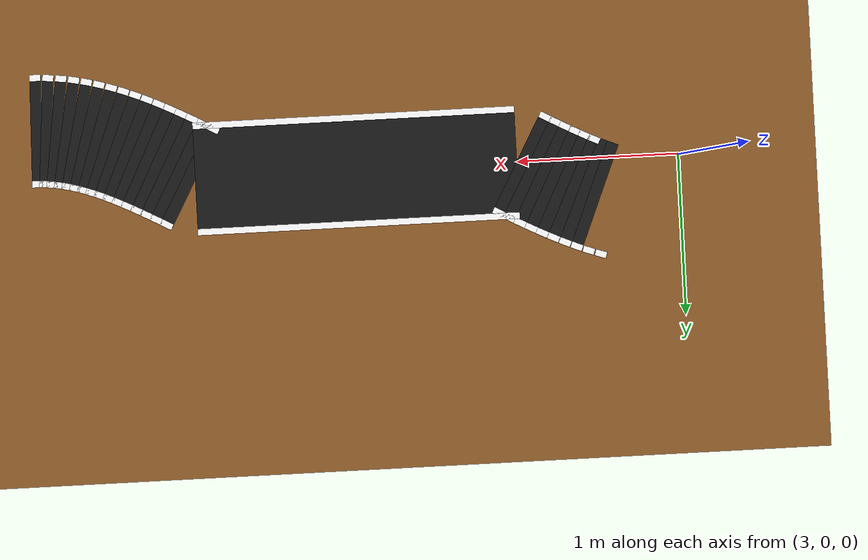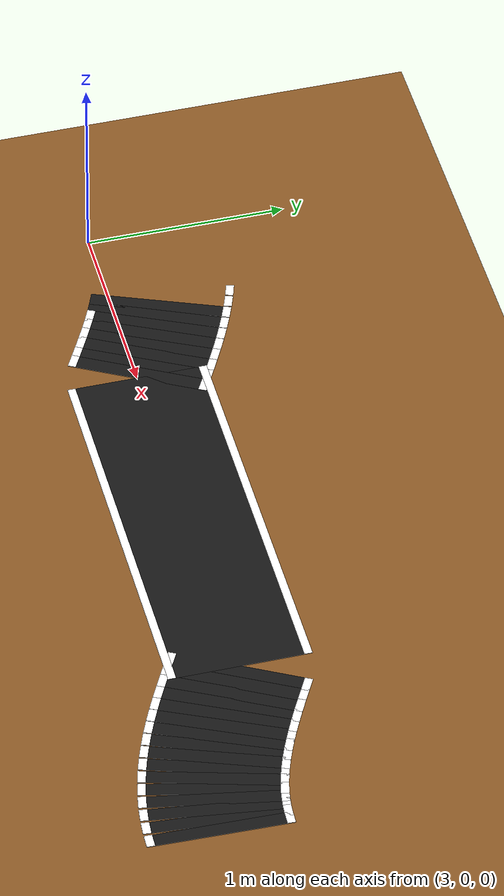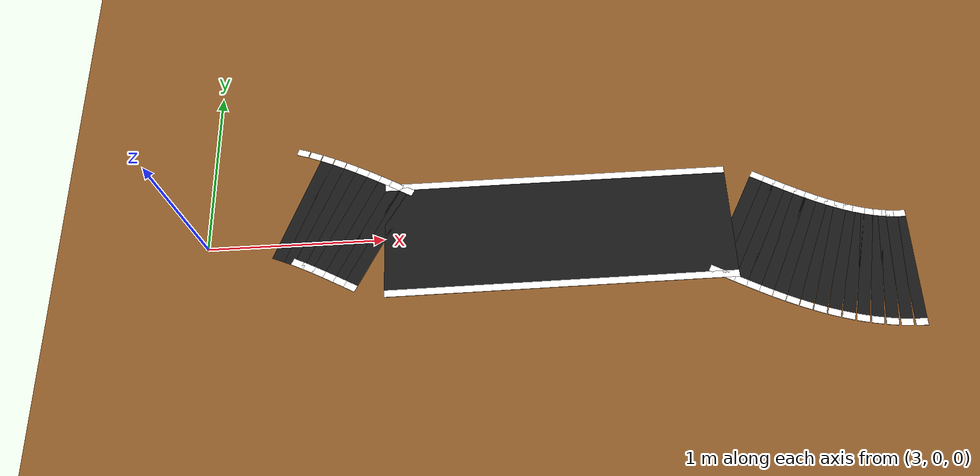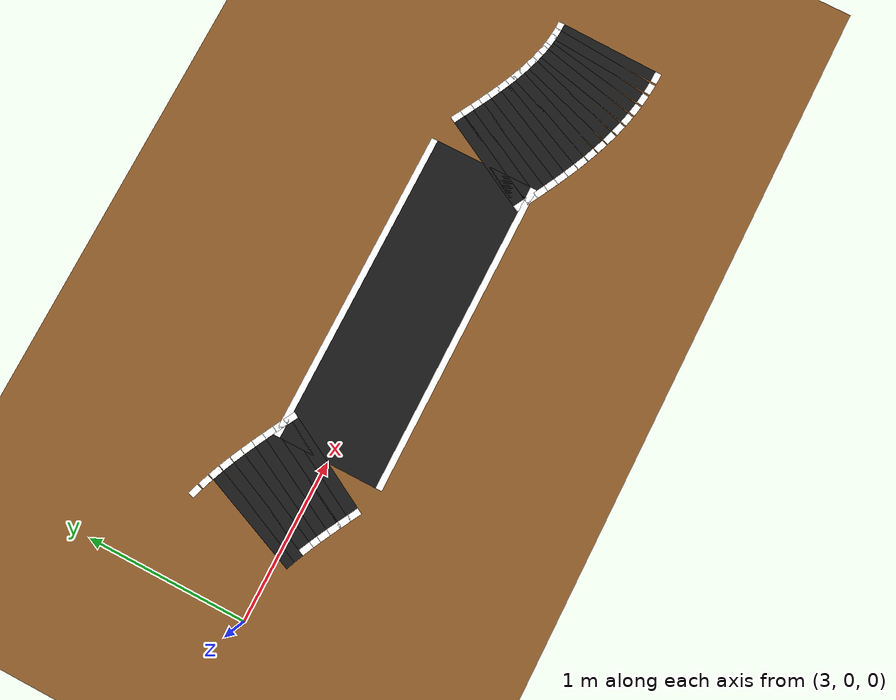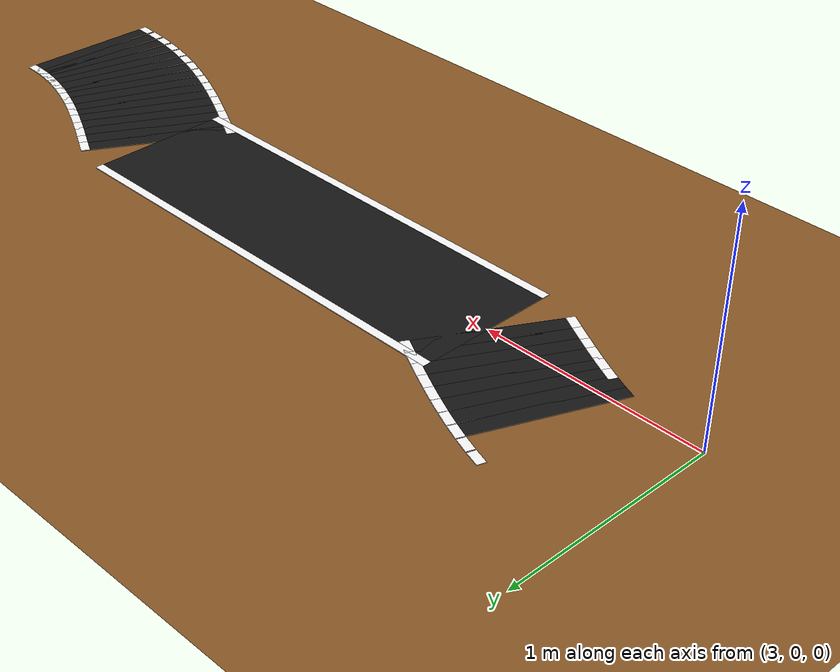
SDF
<sdf version="1.9">
 <world name="lka_world">
  <model name="ground_plane">
   <static>true</static>
   <link name="link">
    <collision name="col">
     <geometry><plane><normal>0 0 1</normal><size>100 100</size></plane></geometry>
     <surface><friction><ode><mu>0.8</mu><mu2>0.8</mu2></ode></friction></surface>
    </collision>
    <visual name="vis">
     <geometry><plane><normal>0 0 1</normal><size>100 100</size></plane></geometry>
     <material><ambient>0.45 0.28 0.10 1</ambient><diffuse>0.55 0.35 0.15 1</diffuse></material>
    </visual>
   </link>
  </model>
  <model name="c1_left_22">
   <static>true</static>
   <pose>3.508957 0.594733 0.002000 0.000000 0.000000 -0.316489</pose>
   <link name="link">
    <collision name="col">
     <geometry><box><size>0.071764 0.040000 0.003000</size></box></geometry>
     <surface><friction><ode><mu>1.0</mu><mu2>1.0</mu2></ode></friction></surface>
    </collision>
    <visual name="vis">
     <geometry><box><size>0.071764 0.040000 0.003000</size></box></geometry>
     <material><ambient>1.0 1.0 1.0 1</ambient><diffuse>1.0 1.0 1.0 1</diffuse></material>
    </visual>
   </link>
  </model>
  <model name="c1_left_23">
   <static>true</static>
   <pose>3.583046 0.568908 0.002000 0.000000 0.000000 -0.353679</pose>
   <link name="link">
    <collision name="col">
     <geometry><box><size>0.072621 0.040000 0.003000</size></box></geometry>
     <surface><friction><ode><mu>1.0</mu><mu2>1.0</mu2></ode></friction></surface>
    </collision>
    <visual name="vis">
     <geometry><box><size>0.072621 0.040000 0.003000</size></box></geometry>
     <material><ambient>1.0 1.0 1.0 1</ambient><diffuse>1.0 1.0 1.0 1</diffuse></material>
    </visual>
   </link>
  </model>
  <model name="c1_road_24">
   <static>true</static>
   <pose>3.531250 0.235046 0.001000 0.000000 0.000000 -0.386829</pose>
   <link name="link">
    <collision name="col">
     <geometry><box><size>0.073483 0.700000 0.002000</size></box></geometry>
     <surface><friction><ode><mu>1.0</mu><mu2>1.0</mu2></ode></friction></surface>
    </collision>
    <visual name="vis">
     <geometry><box><size>0.073483 0.700000 0.002000</size></box></geometry>
     <material><ambient>0.06 0.06 0.06 1</ambient><diffuse>0.09 0.09 0.09 1</diffuse></material>
    </visual>
   </link>
  </model>
  <model name="c1_left_24">
   <static>true</static>
   <pose>3.655744 0.540662 0.002000 0.000000 0.000000 -0.386829</pose>
   <link name="link">
    <collision name="col">
     <geometry><box><size>0.073483 0.040000 0.003000</size></box></geometry>
     <surface><friction><ode><mu>1.0</mu><mu2>1.0</mu2></ode></friction></surface>
    </collision>
    <visual name="vis">
     <geometry><box><size>0.073483 0.040000 0.003000</size></box></geometry>
     <material><ambient>1.0 1.0 1.0 1</ambient><diffuse>1.0 1.0 1.0 1</diffuse></material>
    </visual>
   </link>
  </model>
  <model name="c1_road_25">
   <static>true</static>
   <pose>3.593750 0.208495 0.001000 0.000000 0.000000 -0.415829</pose>
   <link name="link">
    <collision name="col">
     <geometry><box><size>0.074318 0.700000 0.002000</size></box></geometry>
     <surface><friction><ode><mu>1.0</mu><mu2>1.0</mu2></ode></friction></surface>
    </collision>
    <visual name="vis">
     <geometry><box><size>0.074318 0.700000 0.002000</size></box></geometry>
     <material><ambient>0.06 0.06 0.06 1</ambient><diffuse>0.09 0.09 0.09 1</diffuse></material>
    </visual>
   </link>
  </model>
  <model name="c1_left_25">
   <static>true</static>
   <pose>3.727053 0.510373 0.002000 0.000000 0.000000 -0.415829</pose>
   <link name="link">
    <collision name="col">
     <geometry><box><size>0.074318 0.040000 0.003000</size></box></geometry>
     <surface><friction><ode><mu>1.0</mu><mu2>1.0</mu2></ode></friction></surface>
    </collision>
    <visual name="vis">
     <geometry><box><size>0.074318 0.040000 0.003000</size></box></geometry>
     <material><ambient>1.0 1.0 1.0 1</ambient><diffuse>1.0 1.0 1.0 1</diffuse></material>
    </visual>
   </link>
  </model>
  <model name="c1_road_26">
   <static>true</static>
   <pose>3.656250 0.179936 0.001000 0.000000 0.000000 -0.440632</pose>
   <link name="link">
    <collision name="col">
     <geometry><box><size>0.075095 0.700000 0.002000</size></box></geometry>
     <surface><friction><ode><mu>1.0</mu><mu2>1.0</mu2></ode></friction></surface>
    </collision>
    <visual name="vis">
     <geometry><box><size>0.075095 0.700000 0.002000</size></box></geometry>
     <material><ambient>0.06 0.06 0.06 1</ambient><diffuse>0.09 0.09 0.09 1</diffuse></material>
    </visual>
   </link>
  </model>
  <model name="c1_left_26">
   <static>true</static>
   <pose>3.796999 0.478415 0.002000 0.000000 0.000000 -0.440632</pose>
   <link name="link">
    <collision name="col">
     <geometry><box><size>0.075095 0.040000 0.003000</size></box></geometry>
     <surface><friction><ode><mu>1.0</mu><mu2>1.0</mu2></ode></friction></surface>
    </collision>
    <visual name="vis">
     <geometry><box><size>0.075095 0.040000 0.003000</size></box></geometry>
     <material><ambient>1.0 1.0 1.0 1</ambient><diffuse>1.0 1.0 1.0 1</diffuse></material>
    </visual>
   </link>
  </model>
  <model name="c1_right_26">
   <static>true</static>
   <pose>3.515501 -0.118543 0.002000 0.000000 0.000000 -0.440632</pose>
   <link name="link">
    <collision name="col">
     <geometry><box><size>0.075095 0.040000 0.003000</size></box></geometry>
     <surface><friction><ode><mu>1.0</mu><mu2>1.0</mu2></ode></friction></surface>
    </collision>
    <visual name="vis">
     <geometry><box><size>0.075095 0.040000 0.003000</size></box></geometry>
     <material><ambient>1.0 1.0 1.0 1</ambient><diffuse>1.0 1.0 1.0 1</diffuse></material>
    </visual>
   </link>
  </model>
  <model name="c1_road_27">
   <static>true</static>
   <pose>3.718750 0.149644 0.001000 0.000000 0.000000 -0.461234</pose>
   <link name="link">
    <collision name="col">
     <geometry><box><size>0.075788 0.700000 0.002000</size></box></geometry>
     <surface><friction><ode><mu>1.0</mu><mu2>1.0</mu2></ode></friction></surface>
    </collision>
    <visual name="vis">
     <geometry><box><size>0.075788 0.700000 0.002000</size></box></geometry>
     <material><ambient>0.06 0.06 0.06 1</ambient><diffuse>0.09 0.09 0.09 1</diffuse></material>
    </visual>
   </link>
  </model>
  <model name="c1_left_27">
   <static>true</static>
   <pose>3.865618 0.445161 0.002000 0.000000 0.000000 -0.461234</pose>
   <link name="link">
    <collision name="col">
     <geometry><box><size>0.075788 0.040000 0.003000</size></box></geometry>
     <surface><friction><ode><mu>1.0</mu><mu2>1.0</mu2></ode></friction></surface>
    </collision>
    <visual name="vis">
     <geometry><box><size>0.075788 0.040000 0.003000</size></box></geometry>
     <material><ambient>1.0 1.0 1.0 1</ambient><diffuse>1.0 1.0 1.0 1</diffuse></material>
    </visual>
   </link>
  </model>
  <model name="c1_right_27">
   <static>true</static>
   <pose>3.571882 -0.145872 0.002000 0.000000 0.000000 -0.461234</pose>
   <link name="link">
    <collision name="col">
     <geometry><box><size>0.075788 0.040000 0.003000</size></box></geometry>
     <surface><friction><ode><mu>1.0</mu><mu2>1.0</mu2></ode></friction></surface>
    </collision>
    <visual name="vis">
     <geometry><box><size>0.075788 0.040000 0.003000</size></box></geometry>
     <material><ambient>1.0 1.0 1.0 1</ambient><diffuse>1.0 1.0 1.0 1</diffuse></material>
    </visual>
   </link>
  </model>
  <model name="c1_road_28">
   <static>true</static>
   <pose>3.781250 0.117911 0.001000 0.000000 0.000000 -0.477654</pose>
   <link name="link">
    <collision name="col">
     <geometry><box><size>0.076371 0.700000 0.002000</size></box></geometry>
     <surface><friction><ode><mu>1.0</mu><mu2>1.0</mu2></ode></friction></surface>
    </collision>
    <visual name="vis">
     <geometry><box><size>0.076371 0.700000 0.002000</size></box></geometry>
     <material><ambient>0.06 0.06 0.06 1</ambient><diffuse>0.09 0.09 0.09 1</diffuse></material>
    </visual>
   </link>
  </model>
  <model name="c1_left_28">
   <static>true</static>
   <pose>3.932950 0.410976 0.002000 0.000000 0.000000 -0.477654</pose>
   <link name="link">
    <collision name="col">
     <geometry><box><size>0.076371 0.040000 0.003000</size></box></geometry>
     <surface><friction><ode><mu>1.0</mu><mu2>1.0</mu2></ode></friction></surface>
    </collision>
    <visual name="vis">
     <geometry><box><size>0.076371 0.040000 0.003000</size></box></geometry>
     <material><ambient>1.0 1.0 1.0 1</ambient><diffuse>1.0 1.0 1.0 1</diffuse></material>
    </visual>
   </link>
  </model>
  <model name="c1_right_28">
   <static>true</static>
   <pose>3.629550 -0.175154 0.002000 0.000000 0.000000 -0.477654</pose>
   <link name="link">
    <collision name="col">
     <geometry><box><size>0.076371 0.040000 0.003000</size></box></geometry>
     <surface><friction><ode><mu>1.0</mu><mu2>1.0</mu2></ode></friction></surface>
    </collision>
    <visual name="vis">
     <geometry><box><size>0.076371 0.040000 0.003000</size></box></geometry>
     <material><ambient>1.0 1.0 1.0 1</ambient><diffuse>1.0 1.0 1.0 1</diffuse></material>
    </visual>
   </link>
  </model>
  <model name="c1_road_29">
   <static>true</static>
   <pose>3.843750 0.085043 0.001000 0.000000 0.000000 -0.489927</pose>
   <link name="link">
    <collision name="col">
     <geometry><box><size>0.076826 0.700000 0.002000</size></box></geometry>
     <surface><friction><ode><mu>1.0</mu><mu2>1.0</mu2></ode></friction></surface>
    </collision>
    <visual name="vis">
     <geometry><box><size>0.076826 0.700000 0.002000</size></box></geometry>
     <material><ambient>0.06 0.06 0.06 1</ambient><diffuse>0.09 0.09 0.09 1</diffuse></material>
    </visual>
   </link>
  </model>
  <model name="c1_left_29">
   <static>true</static>
   <pose>3.999035 0.376224 0.002000 0.000000 0.000000 -0.489927</pose>
   <link name="link">
    <collision name="col">
     <geometry><box><size>0.076826 0.040000 0.003000</size></box></geometry>
     <surface><friction><ode><mu>1.0</mu><mu2>1.0</mu2></ode></friction></surface>
    </collision>
    <visual name="vis">
     <geometry><box><size>0.076826 0.040000 0.003000</size></box></geometry>
     <material><ambient>1.0 1.0 1.0 1</ambient><diffuse>1.0 1.0 1.0 1</diffuse></material>
    </visual>
   </link>
  </model>
  <model name="c1_right_29">
   <static>true</static>
   <pose>3.688465 -0.206138 0.002000 0.000000 0.000000 -0.489927</pose>
   <link name="link">
    <collision name="col">
     <geometry><box><size>0.076826 0.040000 0.003000</size></box></geometry>
     <surface><friction><ode><mu>1.0</mu><mu2>1.0</mu2></ode></friction></surface>
    </collision>
    <visual name="vis">
     <geometry><box><size>0.076826 0.040000 0.003000</size></box></geometry>
     <material><ambient>1.0 1.0 1.0 1</ambient><diffuse>1.0 1.0 1.0 1</diffuse></material>
    </visual>
   </link>
  </model>
  <model name="c1_road_30">
   <static>true</static>
   <pose>3.906250 0.051356 0.001000 0.000000 0.000000 -0.498086</pose>
   <link name="link">
    <collision name="col">
     <geometry><box><size>0.077138 0.700000 0.002000</size></box></geometry>
     <surface><friction><ode><mu>1.0</mu><mu2>1.0</mu2></ode></friction></surface>
    </collision>
    <visual name="vis">
     <geometry><box><size>0.077138 0.700000 0.002000</size></box></geometry>
     <material><ambient>0.06 0.06 0.06 1</ambient><diffuse>0.09 0.09 0.09 1</diffuse></material>
    </visual>
   </link>
  </model>
  <model name="c1_left_30">
   <static>true</static>
   <pose>4.063906 0.341260 0.002000 0.000000 0.000000 -0.498086</pose>
   <link name="link">
    <collision name="col">
     <geometry><box><size>0.077138 0.040000 0.003000</size></box></geometry>
     <surface><friction><ode><mu>1.0</mu><mu2>1.0</mu2></ode></friction></surface>
    </collision>
    <visual name="vis">
     <geometry><box><size>0.077138 0.040000 0.003000</size></box></geometry>
     <material><ambient>1.0 1.0 1.0 1</ambient><diffuse>1.0 1.0 1.0 1</diffuse></material>
    </visual>
   </link>
  </model>
  <model name="c1_right_30">
   <static>true</static>
   <pose>3.748594 -0.238549 0.002000 0.000000 0.000000 -0.498086</pose>
   <link name="link">
    <collision name="col">
     <geometry><box><size>0.077138 0.040000 0.003000</size></box></geometry>
     <surface><friction><ode><mu>1.0</mu><mu2>1.0</mu2></ode></friction></surface>
    </collision>
    <visual name="vis">
     <geometry><box><size>0.077138 0.040000 0.003000</size></box></geometry>
     <material><ambient>1.0 1.0 1.0 1</ambient><diffuse>1.0 1.0 1.0 1</diffuse></material>
    </visual>
   </link>
  </model>
  <model name="c1_road_31">
   <static>true</static>
   <pose>3.968750 0.017174 0.001000 0.000000 0.000000 -0.502158</pose>
   <link name="link">
    <collision name="col">
     <geometry><box><size>0.077296 0.700000 0.002000</size></box></geometry>
     <surface><friction><ode><mu>1.0</mu><mu2>1.0</mu2></ode></friction></surface>
    </collision>
    <visual name="vis">
     <geometry><box><size>0.077296 0.700000 0.002000</size></box></geometry>
     <material><ambient>0.06 0.06 0.06 1</ambient><diffuse>0.09 0.09 0.09 1</diffuse></material>
    </visual>
   </link>
  </model>
  <model name="c1_left_31">
   <static>true</static>
   <pose>4.127585 0.306434 0.002000 0.000000 0.000000 -0.502158</pose>
   <link name="link">
    <collision name="col">
     <geometry><box><size>0.077296 0.040000 0.003000</size></box></geometry>
     <surface><friction><ode><mu>1.0</mu><mu2>1.0</mu2></ode></friction></surface>
    </collision>
    <visual name="vis">
     <geometry><box><size>0.077296 0.040000 0.003000</size></box></geometry>
     <material><ambient>1.0 1.0 1.0 1</ambient><diffuse>1.0 1.0 1.0 1</diffuse></material>
    </visual>
   </link>
  </model>
  <model name="c1_right_31">
   <static>true</static>
   <pose>3.809915 -0.272086 0.002000 0.000000 0.000000 -0.502158</pose>
   <link name="link">
    <collision name="col">
     <geometry><box><size>0.077296 0.040000 0.003000</size></box></geometry>
     <surface><friction><ode><mu>1.0</mu><mu2>1.0</mu2></ode></friction></surface>
    </collision>
    <visual name="vis">
     <geometry><box><size>0.077296 0.040000 0.003000</size></box></geometry>
     <material><ambient>1.0 1.0 1.0 1</ambient><diffuse>1.0 1.0 1.0 1</diffuse></material>
    </visual>
   </link>
  </model>
  <model name="s2_road">
   <static>true</static>
   <pose>5.000000 0.000000 0.001000 0.000000 0.000000 0.000000</pose>
   <link name="link">
    <collision name="col">
     <geometry><box><size>2.000000 0.700000 0.002000</size></box></geometry>
     <surface><friction><ode><mu>1.0</mu><mu2>1.0</mu2></ode></friction></surface>
    </collision>
    <visual name="vis">
     <geometry><box><size>2.000000 0.700000 0.002000</size></box></geometry>
     <material><ambient>0.06 0.06 0.06 1</ambient><diffuse>0.09 0.09 0.09 1</diffuse></material>
    </visual>
   </link>
  </model>
  <model name="s2_left">
   <static>true</static>
   <pose>5.000000 0.330000 0.002000 0.000000 0.000000 0.000000</pose>
   <link name="link">
    <collision name="col">
     <geometry><box><size>2.000000 0.040000 0.003000</size></box></geometry>
     <surface><friction><ode><mu>1.0</mu><mu2>1.0</mu2></ode></friction></surface>
    </collision>
    <visual name="vis">
     <geometry><box><size>2.000000 0.040000 0.003000</size></box></geometry>
     <material><ambient>1.0 1.0 1.0 1</ambient><diffuse>1.0 1.0 1.0 1</diffuse></material>
    </visual>
   </link>
  </model>
  <model name="s2_right">
   <static>true</static>
   <pose>5.000000 -0.330000 0.002000 0.000000 0.000000 0.000000</pose>
   <link name="link">
    <collision name="col">
     <geometry><box><size>2.000000 0.040000 0.003000</size></box></geometry>
     <surface><friction><ode><mu>1.0</mu><mu2>1.0</mu2></ode></friction></surface>
    </collision>
    <visual name="vis">
     <geometry><box><size>2.000000 0.040000 0.003000</size></box></geometry>
     <material><ambient>1.0 1.0 1.0 1</ambient><diffuse>1.0 1.0 1.0 1</diffuse></material>
    </visual>
   </link>
  </model>
  <model name="c2_road_0">
   <static>true</static>
   <pose>6.031250 -0.017174 0.001000 0.000000 0.000000 -0.502158</pose>
   <link name="link">
    <collision name="col">
     <geometry><box><size>0.077296 0.700000 0.002000</size></box></geometry>
     <surface><friction><ode><mu>1.0</mu><mu2>1.0</mu2></ode></friction></surface>
    </collision>
    <visual name="vis">
     <geometry><box><size>0.077296 0.700000 0.002000</size></box></geometry>
     <material><ambient>0.06 0.06 0.06 1</ambient><diffuse>0.09 0.09 0.09 1</diffuse></material>
    </visual>
   </link>
  </model>
  <model name="c2_left_0">
   <static>true</static>
   <pose>6.190085 0.272086 0.002000 0.000000 0.000000 -0.502158</pose>
   <link name="link">
    <collision name="col">
     <geometry><box><size>0.077296 0.040000 0.003000</size></box></geometry>
     <surface><friction><ode><mu>1.0</mu><mu2>1.0</mu2></ode></friction></surface>
    </collision>
    <visual name="vis">
     <geometry><box><size>0.077296 0.040000 0.003000</size></box></geometry>
     <material><ambient>1.0 1.0 1.0 1</ambient><diffuse>1.0 1.0 1.0 1</diffuse></material>
    </visual>
   </link>
  </model>
  <model name="c2_right_0">
   <static>true</static>
   <pose>5.872415 -0.306434 0.002000 0.000000 0.000000 -0.502158</pose>
   <link name="link">
    <collision name="col">
     <geometry><box><size>0.077296 0.040000 0.003000</size></box></geometry>
     <surface><friction><ode><mu>1.0</mu><mu2>1.0</mu2></ode></friction></surface>
    </collision>
    <visual name="vis">
     <geometry><box><size>0.077296 0.040000 0.003000</size></box></geometry>
     <material><ambient>1.0 1.0 1.0 1</ambient><diffuse>1.0 1.0 1.0 1</diffuse></material>
    </visual>
   </link>
  </model>
  <model name="c2_road_1">
   <static>true</static>
   <pose>6.093750 -0.051356 0.001000 0.000000 0.000000 -0.498086</pose>
   <link name="link">
    <collision name="col">
     <geometry><box><size>0.077138 0.700000 0.002000</size></box></geometry>
     <surface><friction><ode><mu>1.0</mu><mu2>1.0</mu2></ode></friction></surface>
    </collision>
    <visual name="vis">
     <geometry><box><size>0.077138 0.700000 0.002000</size></box></geometry>
     <material><ambient>0.06 0.06 0.06 1</ambient><diffuse>0.09 0.09 0.09 1</diffuse></material>
    </visual>
   </link>
  </model>
  <model name="c2_left_1">
   <static>true</static>
   <pose>6.251406 0.238549 0.002000 0.000000 0.000000 -0.498086</pose>
   <link name="link">
    <collision name="col">
     <geometry><box><size>0.077138 0.040000 0.003000</size></box></geometry>
     <surface><friction><ode><mu>1.0</mu><mu2>1.0</mu2></ode></friction></surface>
    </collision>
    <visual name="vis">
     <geometry><box><size>0.077138 0.040000 0.003000</size></box></geometry>
     <material><ambient>1.0 1.0 1.0 1</ambient><diffuse>1.0 1.0 1.0 1</diffuse></material>
    </visual>
   </link>
  </model>
  <model name="c2_right_1">
   <static>true</static>
   <pose>5.936094 -0.341260 0.002000 0.000000 0.000000 -0.498086</pose>
   <link name="link">
    <collision name="col">
     <geometry><box><size>0.077138 0.040000 0.003000</size></box></geometry>
     <surface><friction><ode><mu>1.0</mu><mu2>1.0</mu2></ode></friction></surface>
    </collision>
    <visual name="vis">
     <geometry><box><size>0.077138 0.040000 0.003000</size></box></geometry>
     <material><ambient>1.0 1.0 1.0 1</ambient><diffuse>1.0 1.0 1.0 1</diffuse></material>
    </visual>
   </link>
  </model>
  <model name="c2_road_2">
   <static>true</static>
   <pose>6.156250 -0.085043 0.001000 0.000000 0.000000 -0.489927</pose>
   <link name="link">
    <collision name="col">
     <geometry><box><size>0.076826 0.700000 0.002000</size></box></geometry>
     <surface><friction><ode><mu>1.0</mu><mu2>1.0</mu2></ode></friction></surface>
    </collision>
    <visual name="vis">
     <geometry><box><size>0.076826 0.700000 0.002000</size></box></geometry>
     <material><ambient>0.06 0.06 0.06 1</ambient><diffuse>0.09 0.09 0.09 1</diffuse></material>
    </visual>
   </link>
  </model>
  <model name="c2_left_2">
   <static>true</static>
   <pose>6.311535 0.206138 0.002000 0.000000 0.000000 -0.489927</pose>
   <link name="link">
    <collision name="col">
     <geometry><box><size>0.076826 0.040000 0.003000</size></box></geometry>
     <surface><friction><ode><mu>1.0</mu><mu2>1.0</mu2></ode></friction></surface>
    </collision>
    <visual name="vis">
     <geometry><box><size>0.076826 0.040000 0.003000</size></box></geometry>
     <material><ambient>1.0 1.0 1.0 1</ambient><diffuse>1.0 1.0 1.0 1</diffuse></material>
    </visual>
   </link>
  </model>
  <model name="c2_right_2">
   <static>true</static>
   <pose>6.000965 -0.376224 0.002000 0.000000 0.000000 -0.489927</pose>
   <link name="link">
    <collision name="col">
     <geometry><box><size>0.076826 0.040000 0.003000</size></box></geometry>
     <surface><friction><ode><mu>1.0</mu><mu2>1.0</mu2></ode></friction></surface>
    </collision>
    <visual name="vis">
     <geometry><box><size>0.076826 0.040000 0.003000</size></box></geometry>
     <material><ambient>1.0 1.0 1.0 1</ambient><diffuse>1.0 1.0 1.0 1</diffuse></material>
    </visual>
   </link>
  </model>
  <model name="c2_road_3">
   <static>true</static>
   <pose>6.218750 -0.117911 0.001000 0.000000 0.000000 -0.477654</pose>
   <link name="link">
    <collision name="col">
     <geometry><box><size>0.076371 0.700000 0.002000</size></box></geometry>
     <surface><friction><ode><mu>1.0</mu><mu2>1.0</mu2></ode></friction></surface>
    </collision>
    <visual name="vis">
     <geometry><box><size>0.076371 0.700000 0.002000</size></box></geometry>
     <material><ambient>0.06 0.06 0.06 1</ambient><diffuse>0.09 0.09 0.09 1</diffuse></material>
    </visual>
   </link>
  </model>
  <model name="c2_left_3">
   <static>true</static>
   <pose>6.370450 0.175154 0.002000 0.000000 0.000000 -0.477654</pose>
   <link name="link">
    <collision name="col">
     <geometry><box><size>0.076371 0.040000 0.003000</size></box></geometry>
     <surface><friction><ode><mu>1.0</mu><mu2>1.0</mu2></ode></friction></surface>
    </collision>
    <visual name="vis">
     <geometry><box><size>0.076371 0.040000 0.003000</size></box></geometry>
     <material><ambient>1.0 1.0 1.0 1</ambient><diffuse>1.0 1.0 1.0 1</diffuse></material>
    </visual>
   </link>
  </model>
  <model name="c2_right_3">
   <static>true</static>
   <pose>6.067050 -0.410976 0.002000 0.000000 0.000000 -0.477654</pose>
   <link name="link">
    <collision name="col">
     <geometry><box><size>0.076371 0.040000 0.003000</size></box></geometry>
     <surface><friction><ode><mu>1.0</mu><mu2>1.0</mu2></ode></friction></surface>
    </collision>
    <visual name="vis">
     <geometry><box><size>0.076371 0.040000 0.003000</size></box></geometry>
     <material><ambient>1.0 1.0 1.0 1</ambient><diffuse>1.0 1.0 1.0 1</diffuse></material>
    </visual>
   </link>
  </model>
  <model name="c2_road_4">
   <static>true</static>
   <pose>6.281250 -0.149644 0.001000 0.000000 0.000000 -0.461234</pose>
   <link name="link">
    <collision name="col">
     <geometry><box><size>0.075788 0.700000 0.002000</size></box></geometry>
     <surface><friction><ode><mu>1.0</mu><mu2>1.0</mu2></ode></friction></surface>
    </collision>
    <visual name="vis">
     <geometry><box><size>0.075788 0.700000 0.002000</size></box></geometry>
     <material><ambient>0.06 0.06 0.06 1</ambient><diffuse>0.09 0.09 0.09 1</diffuse></material>
    </visual>
   </link>
  </model>
  <model name="c2_left_4">
   <static>true</static>
   <pose>6.428118 0.145872 0.002000 0.000000 0.000000 -0.461234</pose>
   <link name="link">
    <collision name="col">
     <geometry><box><size>0.075788 0.040000 0.003000</size></box></geometry>
     <surface><friction><ode><mu>1.0</mu><mu2>1.0</mu2></ode></friction></surface>
    </collision>
    <visual name="vis">
     <geometry><box><size>0.075788 0.040000 0.003000</size></box></geometry>
     <material><ambient>1.0 1.0 1.0 1</ambient><diffuse>1.0 1.0 1.0 1</diffuse></material>
    </visual>
   </link>
  </model>
  <model name="c2_right_4">
   <static>true</static>
   <pose>6.134382 -0.445161 0.002000 0.000000 0.000000 -0.461234</pose>
   <link name="link">
    <collision name="col">
     <geometry><box><size>0.075788 0.040000 0.003000</size></box></geometry>
     <surface><friction><ode><mu>1.0</mu><mu2>1.0</mu2></ode></friction></surface>
    </collision>
    <visual name="vis">
     <geometry><box><size>0.075788 0.040000 0.003000</size></box></geometry>
     <material><ambient>1.0 1.0 1.0 1</ambient><diffuse>1.0 1.0 1.0 1</diffuse></material>
    </visual>
   </link>
  </model>
  <model name="c2_road_5">
   <static>true</static>
   <pose>6.343750 -0.179936 0.001000 0.000000 0.000000 -0.440632</pose>
   <link name="link">
    <collision name="col">
     <geometry><box><size>0.075095 0.700000 0.002000</size></box></geometry>
     <surface><friction><ode><mu>1.0</mu><mu2>1.0</mu2></ode></friction></surface>
    </collision>
    <visual name="vis">
     <geometry><box><size>0.075095 0.700000 0.002000</size></box></geometry>
     <material><ambient>0.06 0.06 0.06 1</ambient><diffuse>0.09 0.09 0.09 1</diffuse></material>
    </visual>
   </link>
  </model>
  <model name="c2_left_5">
   <static>true</static>
   <pose>6.484499 0.118543 0.002000 0.000000 0.000000 -0.440632</pose>
   <link name="link">
    <collision name="col">
     <geometry><box><size>0.075095 0.040000 0.003000</size></box></geometry>
     <surface><friction><ode><mu>1.0</mu><mu2>1.0</mu2></ode></friction></surface>
    </collision>
    <visual name="vis">
     <geometry><box><size>0.075095 0.040000 0.003000</size></box></geometry>
     <material><ambient>1.0 1.0 1.0 1</ambient><diffuse>1.0 1.0 1.0 1</diffuse></material>
    </visual>
   </link>
  </model>
  <model name="c2_right_5">
   <static>true</static>
   <pose>6.203001 -0.478415 0.002000 0.000000 0.000000 -0.440632</pose>
   <link name="link">
    <collision name="col">
     <geometry><box><size>0.075095 0.040000 0.003000</size></box></geometry>
     <surface><friction><ode><mu>1.0</mu><mu2>1.0</mu2></ode></friction></surface>
    </collision>
    <visual name="vis">
     <geometry><box><size>0.075095 0.040000 0.003000</size></box></geometry>
     <material><ambient>1.0 1.0 1.0 1</ambient><diffuse>1.0 1.0 1.0 1</diffuse></material>
    </visual>
   </link>
  </model>
  <model name="c2_road_6">
   <static>true</static>
   <pose>6.406250 -0.208495 0.001000 0.000000 0.000000 -0.415829</pose>
   <link name="link">
    <collision name="col">
     <geometry><box><size>0.074318 0.700000 0.002000</size></box></geometry>
     <surface><friction><ode><mu>1.0</mu><mu2>1.0</mu2></ode></friction></surface>
    </collision>
    <visual name="vis">
     <geometry><box><size>0.074318 0.700000 0.002000</size></box></geometry>
     <material><ambient>0.06 0.06 0.06 1</ambient><diffuse>0.09 0.09 0.09 1</diffuse></material>
    </visual>
   </link>
  </model>
  <model name="c2_left_6">
   <static>true</static>
   <pose>6.539553 0.093383 0.002000 0.000000 0.000000 -0.415829</pose>
   <link name="link">
    <collision name="col">
     <geometry><box><size>0.074318 0.040000 0.003000</size></box></geometry>
     <surface><friction><ode><mu>1.0</mu><mu2>1.0</mu2></ode></friction></surface>
    </collision>
    <visual name="vis">
     <geometry><box><size>0.074318 0.040000 0.003000</size></box></geometry>
     <material><ambient>1.0 1.0 1.0 1</ambient><diffuse>1.0 1.0 1.0 1</diffuse></material>
    </visual>
   </link>
  </model>
  <model name="c2_right_6">
   <static>true</static>
   <pose>6.272947 -0.510373 0.002000 0.000000 0.000000 -0.415829</pose>
   <link name="link">
    <collision name="col">
     <geometry><box><size>0.074318 0.040000 0.003000</size></box></geometry>
     <surface><friction><ode><mu>1.0</mu><mu2>1.0</mu2></ode></friction></surface>
    </collision>
    <visual name="vis">
     <geometry><box><size>0.074318 0.040000 0.003000</size></box></geometry>
     <material><ambient>1.0 1.0 1.0 1</ambient><diffuse>1.0 1.0 1.0 1</diffuse></material>
    </visual>
   </link>
  </model>
  <model name="c2_road_7">
   <static>true</static>
   <pose>6.468750 -0.235046 0.001000 0.000000 0.000000 -0.386829</pose>
   <link name="link">
    <collision name="col">
     <geometry><box><size>0.073483 0.700000 0.002000</size></box></geometry>
     <surface><friction><ode><mu>1.0</mu><mu2>1.0</mu2></ode></friction></surface>
    </collision>
    <visual name="vis">
     <geometry><box><size>0.073483 0.700000 0.002000</size></box></geometry>
     <material><ambient>0.06 0.06 0.06 1</ambient><diffuse>0.09 0.09 0.09 1</diffuse></material>
    </visual>
   </link>
  </model>
  <model name="c2_left_7">
   <static>true</static>
   <pose>6.593244 0.070571 0.002000 0.000000 0.000000 -0.386829</pose>
   <link name="link">
    <collision name="col">
     <geometry><box><size>0.073483 0.040000 0.003000</size></box></geometry>
     <surface><friction><ode><mu>1.0</mu><mu2>1.0</mu2></ode></friction></surface>
    </collision>
    <visual name="vis">
     <geometry><box><size>0.073483 0.040000 0.003000</size></box></geometry>
     <material><ambient>1.0 1.0 1.0 1</ambient><diffuse>1.0 1.0 1.0 1</diffuse></material>
    </visual>
   </link>
  </model>
  <model name="c2_right_7">
   <static>true</static>
   <pose>6.344256 -0.540662 0.002000 0.000000 0.000000 -0.386829</pose>
   <link name="link">
    <collision name="col">
     <geometry><box><size>0.073483 0.040000 0.003000</size></box></geometry>
     <surface><friction><ode><mu>1.0</mu><mu2>1.0</mu2></ode></friction></surface>
    </collision>
    <visual name="vis">
     <geometry><box><size>0.073483 0.040000 0.003000</size></box></geometry>
     <material><ambient>1.0 1.0 1.0 1</ambient><diffuse>1.0 1.0 1.0 1</diffuse></material>
    </visual>
   </link>
  </model>
  <model name="c2_road_8">
   <static>true</static>
   <pose>6.531250 -0.259333 0.001000 0.000000 0.000000 -0.353679</pose>
   <link name="link">
    <collision name="col">
     <geometry><box><size>0.072621 0.700000 0.002000</size></box></geometry>
     <surface><friction><ode><mu>1.0</mu><mu2>1.0</mu2></ode></friction></surface>
    </collision>
    <visual name="vis">
     <geometry><box><size>0.072621 0.700000 0.002000</size></box></geometry>
     <material><ambient>0.06 0.06 0.06 1</ambient><diffuse>0.09 0.09 0.09 1</diffuse></material>
    </visual>
   </link>
  </model>
  <model name="c2_left_8">
   <static>true</static>
   <pose>6.645546 0.050242 0.002000 0.000000 0.000000 -0.353679</pose>
   <link name="link">
    <collision name="col">
     <geometry><box><size>0.072621 0.040000 0.003000</size></box></geometry>
     <surface><friction><ode><mu>1.0</mu><mu2>1.0</mu2></ode></friction></surface>
    </collision>
    <visual name="vis">
     <geometry><box><size>0.072621 0.040000 0.003000</size></box></geometry>
     <material><ambient>1.0 1.0 1.0 1</ambient><diffuse>1.0 1.0 1.0 1</diffuse></material>
    </visual>
   </link>
  </model>
  <model name="c2_right_8">
   <static>true</static>
   <pose>6.416954 -0.568908 0.002000 0.000000 0.000000 -0.353679</pose>
   <link name="link">
    <collision name="col">
     <geometry><box><size>0.072621 0.040000 0.003000</size></box></geometry>
     <surface><friction><ode><mu>1.0</mu><mu2>1.0</mu2></ode></friction></surface>
    </collision>
    <visual name="vis">
     <geometry><box><size>0.072621 0.040000 0.003000</size></box></geometry>
     <material><ambient>1.0 1.0 1.0 1</ambient><diffuse>1.0 1.0 1.0 1</diffuse></material>
    </visual>
   </link>
  </model>
  <model name="c2_road_9">
   <static>true</static>
   <pose>6.593750 -0.281123 0.001000 0.000000 0.000000 -0.316489</pose>
   <link name="link">
    <collision name="col">
     <geometry><box><size>0.071764 0.700000 0.002000</size></box></geometry>
     <surface><friction><ode><mu>1.0</mu><mu2>1.0</mu2></ode></friction></surface>
    </collision>
    <visual name="vis">
     <geometry><box><size>0.071764 0.700000 0.002000</size></box></geometry>
     <material><ambient>0.06 0.06 0.06 1</ambient><diffuse>0.09 0.09 0.09 1</diffuse></material>
    </visual>
   </link>
  </model>
  <model name="c2_left_9">
   <static>true</static>
   <pose>6.696457 0.032488 0.002000 0.000000 0.000000 -0.316489</pose>
   <link name="link">
    <collision name="col">
     <geometry><box><size>0.071764 0.040000 0.003000</size></box></geometry>
     <surface><friction><ode><mu>1.0</mu><mu2>1.0</mu2></ode></friction></surface>
    </collision>
    <visual name="vis">
     <geometry><box><size>0.071764 0.040000 0.003000</size></box></geometry>
     <material><ambient>1.0 1.0 1.0 1</ambient><diffuse>1.0 1.0 1.0 1</diffuse></material>
    </visual>
   </link>
  </model>
  <model name="c2_right_9">
   <static>true</static>
   <pose>6.491043 -0.594733 0.002000 0.000000 0.000000 -0.316489</pose>
   <link name="link">
    <collision name="col">
     <geometry><box><size>0.071764 0.040000 0.003000</size></box></geometry>
     <surface><friction><ode><mu>1.0</mu><mu2>1.0</mu2></ode></friction></surface>
    </collision>
    <visual name="vis">
     <geometry><box><size>0.071764 0.040000 0.003000</size></box></geometry>
     <material><ambient>1.0 1.0 1.0 1</ambient><diffuse>1.0 1.0 1.0 1</diffuse></material>
    </visual>
   </link>
  </model>
  <model name="c2_road_10">
   <static>true</static>
   <pose>6.656250 -0.300205 0.001000 0.000000 0.000000 -0.275453</pose>
   <link name="link">
    <collision name="col">
     <geometry><box><size>0.070947 0.700000 0.002000</size></box></geometry>
     <surface><friction><ode><mu>1.0</mu><mu2>1.0</mu2></ode></friction></surface>
    </collision>
    <visual name="vis">
     <geometry><box><size>0.070947 0.700000 0.002000</size></box></geometry>
     <material><ambient>0.06 0.06 0.06 1</ambient><diffuse>0.09 0.09 0.09 1</diffuse></material>
    </visual>
   </link>
  </model>
  <model name="c2_left_10">
   <static>true</static>
   <pose>6.746004 0.017355 0.002000 0.000000 0.000000 -0.275453</pose>
   <link name="link">
    <collision name="col">
     <geometry><box><size>0.070947 0.040000 0.003000</size></box></geometry>
     <surface><friction><ode><mu>1.0</mu><mu2>1.0</mu2></ode></friction></surface>
    </collision>
    <visual name="vis">
     <geometry><box><size>0.070947 0.040000 0.003000</size></box></geometry>
     <material><ambient>1.0 1.0 1.0 1</ambient><diffuse>1.0 1.0 1.0 1</diffuse></material>
    </visual>
   </link>
  </model>
  <model name="c2_right_10">
   <static>true</static>
   <pose>6.566496 -0.617765 0.002000 0.000000 0.000000 -0.275453</pose>
   <link name="link">
    <collision name="col">
     <geometry><box><size>0.070947 0.040000 0.003000</size></box></geometry>
     <surface><friction><ode><mu>1.0</mu><mu2>1.0</mu2></ode></friction></surface>
    </collision>
    <visual name="vis">
     <geometry><box><size>0.070947 0.040000 0.003000</size></box></geometry>
     <material><ambient>1.0 1.0 1.0 1</ambient><diffuse>1.0 1.0 1.0 1</diffuse></material>
    </visual>
   </link>
  </model>
  <model name="c2_road_11">
   <static>true</static>
   <pose>6.718750 -0.316396 0.001000 0.000000 0.000000 -0.230866</pose>
   <link name="link">
    <collision name="col">
     <geometry><box><size>0.070202 0.700000 0.002000</size></box></geometry>
     <surface><friction><ode><mu>1.0</mu><mu2>1.0</mu2></ode></friction></surface>
    </collision>
    <visual name="vis">
     <geometry><box><size>0.070202 0.700000 0.002000</size></box></geometry>
     <material><ambient>0.06 0.06 0.06 1</ambient><diffuse>0.09 0.09 0.09 1</diffuse></material>
    </visual>
   </link>
  </model>
  <model name="c2_left_11">
   <static>true</static>
   <pose>6.794261 0.004848 0.002000 0.000000 0.000000 -0.230866</pose>
   <link name="link">
    <collision name="col">
     <geometry><box><size>0.070202 0.040000 0.003000</size></box></geometry>
     <surface><friction><ode><mu>1.0</mu><mu2>1.0</mu2></ode></friction></surface>
    </collision>
    <visual name="vis">
     <geometry><box><size>0.070202 0.040000 0.003000</size></box></geometry>
     <material><ambient>1.0 1.0 1.0 1</ambient><diffuse>1.0 1.0 1.0 1</diffuse></material>
    </visual>
   </link>
  </model>
  <model name="c2_right_11">
   <static>true</static>
   <pose>6.643239 -0.637641 0.002000 0.000000 0.000000 -0.230866</pose>
   <link name="link">
    <collision name="col">
     <geometry><box><size>0.070202 0.040000 0.003000</size></box></geometry>
     <surface><friction><ode><mu>1.0</mu><mu2>1.0</mu2></ode></friction></surface>
    </collision>
    <visual name="vis">
     <geometry><box><size>0.070202 0.040000 0.003000</size></box></geometry>
     <material><ambient>1.0 1.0 1.0 1</ambient><diffuse>1.0 1.0 1.0 1</diffuse></material>
    </visual>
   </link>
  </model>
  <model name="c2_road_12">
   <static>true</static>
   <pose>6.781250 -0.329540 0.001000 0.000000 0.000000 -0.183137</pose>
   <link name="link">
    <collision name="col">
     <geometry><box><size>0.069562 0.700000 0.002000</size></box></geometry>
     <surface><friction><ode><mu>1.0</mu><mu2>1.0</mu2></ode></friction></surface>
    </collision>
    <visual name="vis">
     <geometry><box><size>0.069562 0.700000 0.002000</size></box></geometry>
     <material><ambient>0.06 0.06 0.06 1</ambient><diffuse>0.09 0.09 0.09 1</diffuse></material>
    </visual>
   </link>
  </model>
  <model name="c2_left_12">
   <static>true</static>
   <pose>6.841348 -0.005059 0.002000 0.000000 0.000000 -0.183137</pose>
   <link name="link">
    <collision name="col">
     <geometry><box><size>0.069562 0.040000 0.003000</size></box></geometry>
     <surface><friction><ode><mu>1.0</mu><mu2>1.0</mu2></ode></friction></surface>
    </collision>
    <visual name="vis">
     <geometry><box><size>0.069562 0.040000 0.003000</size></box></geometry>
     <material><ambient>1.0 1.0 1.0 1</ambient><diffuse>1.0 1.0 1.0 1</diffuse></material>
    </visual>
   </link>
  </model>
  <model name="c2_right_12">
   <static>true</static>
   <pose>6.721152 -0.654022 0.002000 0.000000 0.000000 -0.183137</pose>
   <link name="link">
    <collision name="col">
     <geometry><box><size>0.069562 0.040000 0.003000</size></box></geometry>
     <surface><friction><ode><mu>1.0</mu><mu2>1.0</mu2></ode></friction></surface>
    </collision>
    <visual name="vis">
     <geometry><box><size>0.069562 0.040000 0.003000</size></box></geometry>
     <material><ambient>1.0 1.0 1.0 1</ambient><diffuse>1.0 1.0 1.0 1</diffuse></material>
    </visual>
   </link>
  </model>
  <model name="c2_road_13">
   <static>true</static>
   <pose>6.843750 -0.339511 0.001000 0.000000 0.000000 -0.132797</pose>
   <link name="link">
    <collision name="col">
     <geometry><box><size>0.069055 0.700000 0.002000</size></box></geometry>
     <surface><friction><ode><mu>1.0</mu><mu2>1.0</mu2></ode></friction></surface>
    </collision>
    <visual name="vis">
     <geometry><box><size>0.069055 0.700000 0.002000</size></box></geometry>
     <material><ambient>0.06 0.06 0.06 1</ambient><diffuse>0.09 0.09 0.09 1</diffuse></material>
    </visual>
   </link>
  </model>
  <model name="c2_left_13">
   <static>true</static>
   <pose>6.887444 -0.012416 0.002000 0.000000 0.000000 -0.132797</pose>
   <link name="link">
    <collision name="col">
     <geometry><box><size>0.069055 0.040000 0.003000</size></box></geometry>
     <surface><friction><ode><mu>1.0</mu><mu2>1.0</mu2></ode></friction></surface>
    </collision>
    <visual name="vis">
     <geometry><box><size>0.069055 0.040000 0.003000</size></box></geometry>
     <material><ambient>1.0 1.0 1.0 1</ambient><diffuse>1.0 1.0 1.0 1</diffuse></material>
    </visual>
   </link>
  </model>
  <model name="c2_right_13">
   <static>true</static>
   <pose>6.800056 -0.666605 0.002000 0.000000 0.000000 -0.132797</pose>
   <link name="link">
    <collision name="col">
     <geometry><box><size>0.069055 0.040000 0.003000</size></box></geometry>
     <surface><friction><ode><mu>1.0</mu><mu2>1.0</mu2></ode></friction></surface>
    </collision>
    <visual name="vis">
     <geometry><box><size>0.069055 0.040000 0.003000</size></box></geometry>
     <material><ambient>1.0 1.0 1.0 1</ambient><diffuse>1.0 1.0 1.0 1</diffuse></material>
    </visual>
   </link>
  </model>
  <model name="c2_road_14">
   <static>true</static>
   <pose>6.906250 -0.346212 0.001000 0.000000 0.000000 -0.080494</pose>
   <link name="link">
    <collision name="col">
     <geometry><box><size>0.068703 0.700000 0.002000</size></box></geometry>
     <surface><friction><ode><mu>1.0</mu><mu2>1.0</mu2></ode></friction></surface>
    </collision>
    <visual name="vis">
     <geometry><box><size>0.068703 0.700000 0.002000</size></box></geometry>
     <material><ambient>0.06 0.06 0.06 1</ambient><diffuse>0.09 0.09 0.09 1</diffuse></material>
    </visual>
   </link>
  </model>
  <model name="c2_left_14">
   <static>true</static>
   <pose>6.932784 -0.017280 0.002000 0.000000 0.000000 -0.080494</pose>
   <link name="link">
    <collision name="col">
     <geometry><box><size>0.068703 0.040000 0.003000</size></box></geometry>
     <surface><friction><ode><mu>1.0</mu><mu2>1.0</mu2></ode></friction></surface>
    </collision>
    <visual name="vis">
     <geometry><box><size>0.068703 0.040000 0.003000</size></box></geometry>
     <material><ambient>1.0 1.0 1.0 1</ambient><diffuse>1.0 1.0 1.0 1</diffuse></material>
    </visual>
   </link>
  </model>
  <model name="c2_right_14">
   <static>true</static>
   <pose>6.879716 -0.675143 0.002000 0.000000 0.000000 -0.080494</pose>
   <link name="link">
    <collision name="col">
     <geometry><box><size>0.068703 0.040000 0.003000</size></box></geometry>
     <surface><friction><ode><mu>1.0</mu><mu2>1.0</mu2></ode></friction></surface>
    </collision>
    <visual name="vis">
     <geometry><box><size>0.068703 0.040000 0.003000</size></box></geometry>
     <material><ambient>1.0 1.0 1.0 1</ambient><diffuse>1.0 1.0 1.0 1</diffuse></material>
    </visual>
   </link>
  </model>
  <model name="c2_road_15">
   <static>true</static>
   <pose>6.968750 -0.349578 0.001000 0.000000 0.000000 -0.026969</pose>
   <link name="link">
    <collision name="col">
     <geometry><box><size>0.068523 0.700000 0.002000</size></box></geometry>
     <surface><friction><ode><mu>1.0</mu><mu2>1.0</mu2></ode></friction></surface>
    </collision>
    <visual name="vis">
     <geometry><box><size>0.068523 0.700000 0.002000</size></box></geometry>
     <material><ambient>0.06 0.06 0.06 1</ambient><diffuse>0.09 0.09 0.09 1</diffuse></material>
    </visual>
   </link>
  </model>
  <model name="c2_left_15">
   <static>true</static>
   <pose>6.977649 -0.019698 0.002000 0.000000 0.000000 -0.026969</pose>
   <link name="link">
    <collision name="col">
     <geometry><box><size>0.068523 0.040000 0.003000</size></box></geometry>
     <surface><friction><ode><mu>1.0</mu><mu2>1.0</mu2></ode></friction></surface>
    </collision>
    <visual name="vis">
     <geometry><box><size>0.068523 0.040000 0.003000</size></box></geometry>
     <material><ambient>1.0 1.0 1.0 1</ambient><diffuse>1.0 1.0 1.0 1</diffuse></material>
    </visual>
   </link>
  </model>
  <model name="c2_right_15">
   <static>true</static>
   <pose>6.959851 -0.679458 0.002000 0.000000 0.000000 -0.026969</pose>
   <link name="link">
    <collision name="col">
     <geometry><box><size>0.068523 0.040000 0.003000</size></box></geometry>
     <surface><friction><ode><mu>1.0</mu><mu2>1.0</mu2></ode></friction></surface>
    </collision>
    <visual name="vis">
     <geometry><box><size>0.068523 0.040000 0.003000</size></box></geometry>
     <material><ambient>1.0 1.0 1.0 1</ambient><diffuse>1.0 1.0 1.0 1</diffuse></material>
    </visual>
   </link>
  </model>
 </world>
</sdf>
